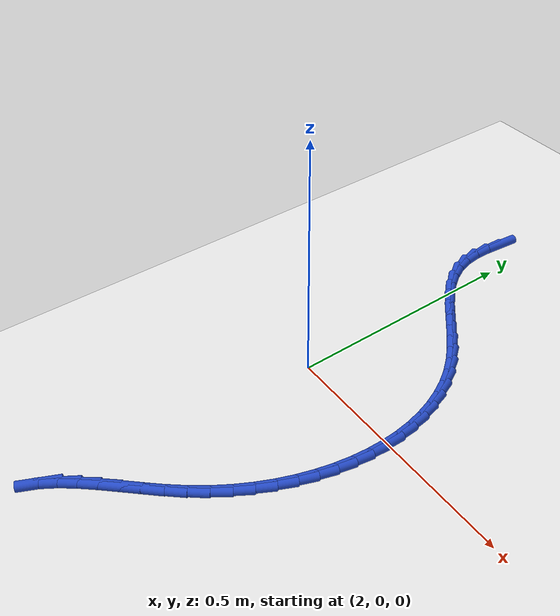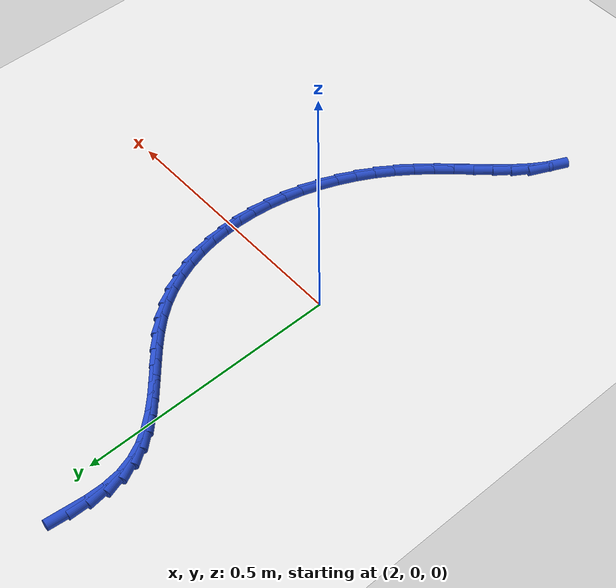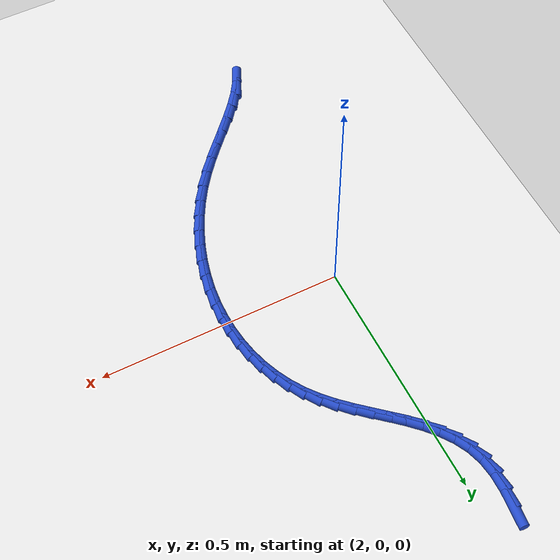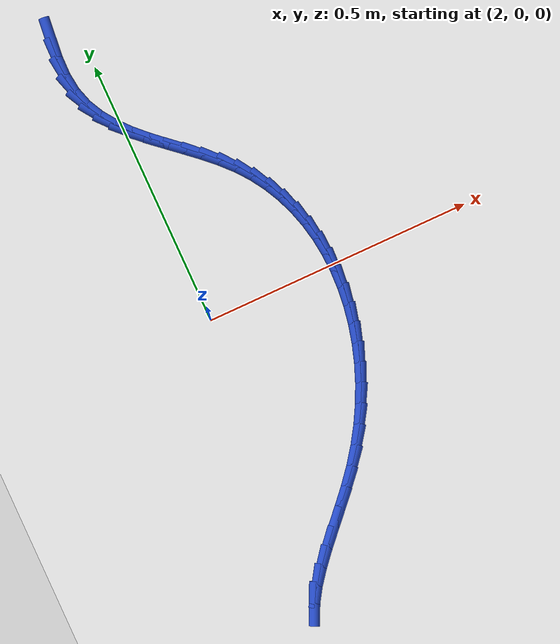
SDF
<sdf version="1.6">
 <world name="default">
  <model name="ground_plane">
   <static>1</static>
   <link name="link">
    <collision name="collision">
     <geometry><plane><normal>0 0 1</normal><size>100 100</size></plane></geometry>
     <surface><friction><ode><mu>100</mu><mu2>50</mu2></ode></friction></surface>
    </collision>
    <visual name="visual">
     <cast_shadows>0</cast_shadows>
     <geometry><plane><normal>0 0 1</normal><size>100 100</size></plane></geometry>
     <material>
      <script><uri>file://media/materials/scripts/gazebo.material</uri><name>Gazebo/WhiteGlow</name></script>
     </material>
    </visual>
   </link>
  </model>
  <model name="line">
   <link name="link_96">
    <pose>1.9489648444106158 0.5792430854870093 0.01 0 1.57 1.4663598435661342</pose>
    <collision name="collision">
     <geometry><cylinder><radius>0.01</radius><length>0.08</length></cylinder></geometry>
    </collision>
    <visual name="visual">
     <material>
      <script><name>Gazebo/Blue</name><uri>file://media/materials/scripts/gazebo.material</uri></script>
     </material>
     <geometry><cylinder><radius>0.01</radius><length>0.08</length></cylinder></geometry>
    </visual>
   </link>
   <link name="link_97">
    <pose>1.9451327325799874 0.5426833573440678 0.01 0 1.57 1.554308639845436</pose>
    <collision name="collision">
     <geometry><cylinder><radius>0.01</radius><length>0.08</length></cylinder></geometry>
    </collision>
    <visual name="visual">
     <material>
      <script><name>Gazebo/Blue</name><uri>file://media/materials/scripts/gazebo.material</uri></script>
     </material>
     <geometry><cylinder><radius>0.01</radius><length>0.08</length></cylinder></geometry>
    </visual>
   </link>
   <link name="link_98">
    <pose>1.9445539183103542 0.5075806882171493 0.01 0 1.57 -1.453545275140963</pose>
    <collision name="collision">
     <geometry><cylinder><radius>0.01</radius><length>0.08</length></cylinder></geometry>
    </collision>
    <visual name="visual">
     <material>
      <script><name>Gazebo/Blue</name><uri>file://media/materials/scripts/gazebo.material</uri></script>
     </material>
     <geometry><cylinder><radius>0.01</radius><length>0.08</length></cylinder></geometry>
    </visual>
   </link>
   <link name="link_99">
    <pose>1.9484276971078203 0.47469389990104727 0.01 0 1.57 -1.275987941624067</pose>
    <collision name="collision">
     <geometry><cylinder><radius>0.01</radius><length>0.08</length></cylinder></geometry>
    </collision>
    <visual name="visual">
     <material>
      <script><name>Gazebo/Blue</name><uri>file://media/materials/scripts/gazebo.material</uri></script>
     </material>
     <geometry><cylinder><radius>0.01</radius><length>0.08</length></cylinder></geometry>
    </visual>
   </link>
   <link name="link_100">
    <pose>1.9575790115432574 0.44455688112424907 0.01 0 1.57 -1.1047672863404894</pose>
    <collision name="collision">
     <geometry><cylinder><radius>0.01</radius><length>0.08</length></cylinder></geometry>
    </collision>
    <visual name="visual">
     <material>
      <script><name>Gazebo/Blue</name><uri>file://media/materials/scripts/gazebo.material</uri></script>
     </material>
     <geometry><cylinder><radius>0.01</radius><length>0.08</length></cylinder></geometry>
    </visual>
   </link>
   <link name="link_101">
    <pose>1.9714911873603325 0.4168973990162129 0.01 0 1.57 -0.962387377001727</pose>
    <collision name="collision">
     <geometry><cylinder><radius>0.01</radius><length>0.08</length></cylinder></geometry>
    </collision>
    <visual name="visual">
     <material>
      <script><name>Gazebo/Blue</name><uri>file://media/materials/scripts/gazebo.material</uri></script>
     </material>
     <geometry><cylinder><radius>0.01</radius><length>0.08</length></cylinder></geometry>
    </visual>
   </link>
   <link name="link_102">
    <pose>1.989347117583172 0.39126270321484263 0.01 0 1.57 -0.8536694280362815</pose>
    <collision name="collision">
     <geometry><cylinder><radius>0.01</radius><length>0.08</length></cylinder></geometry>
    </collision>
    <visual name="visual">
     <material>
      <script><name>Gazebo/Blue</name><uri>file://media/materials/scripts/gazebo.material</uri></script>
     </material>
     <geometry><cylinder><radius>0.01</radius><length>0.08</length></cylinder></geometry>
    </visual>
   </link>
   <link name="link_103">
    <pose>2.0103296952359053 0.3672000433580411 0.01 0 1.57 -0.7778555332459489</pose>
    <collision name="collision">
     <geometry><cylinder><radius>0.01</radius><length>0.08</length></cylinder></geometry>
    </collision>
    <visual name="visual">
     <material>
      <script><name>Gazebo/Blue</name><uri>file://media/materials/scripts/gazebo.material</uri></script>
     </material>
     <geometry><cylinder><radius>0.01</radius><length>0.08</length></cylinder></geometry>
    </visual>
   </link>
   <link name="link_104">
    <pose>2.033621813342656 0.34425666908371155 0.01 0 1.57 -0.7321625265159662</pose>
    <collision name="collision">
     <geometry><cylinder><radius>0.01</radius><length>0.08</length></cylinder></geometry>
    </collision>
    <visual name="visual">
     <material>
      <script><name>Gazebo/Blue</name><uri>file://media/materials/scripts/gazebo.material</uri></script>
     </material>
     <geometry><cylinder><radius>0.01</radius><length>0.08</length></cylinder></geometry>
    </visual>
   </link>
   <link name="link_105">
    <pose>2.0584063649275546 0.3219798300297569 0.01 0 1.57 -0.7140419453198644</pose>
    <collision name="collision">
     <geometry><cylinder><radius>0.01</radius><length>0.08</length></cylinder></geometry>
    </collision>
    <visual name="visual">
     <material>
      <script><name>Gazebo/Blue</name><uri>file://media/materials/scripts/gazebo.material</uri></script>
     </material>
     <geometry><cylinder><radius>0.01</radius><length>0.08</length></cylinder></geometry>
    </visual>
   </link>
   <link name="link_106">
    <pose>2.083866243014726 0.29991677583408083 0.01 0 1.57 -0.7221464372666109</pose>
    <collision name="collision">
     <geometry><cylinder><radius>0.01</radius><length>0.08</length></cylinder></geometry>
    </collision>
    <visual name="visual">
     <material>
      <script><name>Gazebo/Blue</name><uri>file://media/materials/scripts/gazebo.material</uri></script>
     </material>
     <geometry><cylinder><radius>0.01</radius><length>0.08</length></cylinder></geometry>
    </visual>
   </link>
   <link name="link_107">
    <pose>2.1091843406282984 0.2776147561345861 0.01 0 1.57 -0.7565700452572339</pose>
    <collision name="collision">
     <geometry><cylinder><radius>0.01</radius><length>0.08</length></cylinder></geometry>
    </collision>
    <visual name="visual">
     <material>
      <script><name>Gazebo/Blue</name><uri>file://media/materials/scripts/gazebo.material</uri></script>
     </material>
     <geometry><cylinder><radius>0.01</radius><length>0.08</length></cylinder></geometry>
    </visual>
   </link>
   <link name="link_108">
    <pose>2.1335435507923988 0.25462102056917557 0.01 0 1.57 -0.8186679648490488</pose>
    <collision name="collision">
     <geometry><cylinder><radius>0.01</radius><length>0.08</length></cylinder></geometry>
    </collision>
    <visual name="visual">
     <material>
      <script><name>Gazebo/Blue</name><uri>file://media/materials/scripts/gazebo.material</uri></script>
     </material>
     <geometry><cylinder><radius>0.01</radius><length>0.08</length></cylinder></geometry>
    </visual>
   </link>
   <link name="link_109">
    <pose>2.156126766531154 0.23048281877575308 0.01 0 1.57 -0.9082725085427021</pose>
    <collision name="collision">
     <geometry><cylinder><radius>0.01</radius><length>0.08</length></cylinder></geometry>
    </collision>
    <visual name="visual">
     <material>
      <script><name>Gazebo/Blue</name><uri>file://media/materials/scripts/gazebo.material</uri></script>
     </material>
     <geometry><cylinder><radius>0.01</radius><length>0.08</length></cylinder></geometry>
    </visual>
   </link>
   <link name="link_110">
    <pose>2.176172860331102 0.2047878661765708 0.01 0 1.57 -1.0067758353611629</pose>
    <collision name="collision">
     <geometry><cylinder><radius>0.01</radius><length>0.08</length></cylinder></geometry>
    </collision>
    <visual name="visual">
     <material>
      <script><name>Gazebo/Blue</name><uri>file://media/materials/scripts/gazebo.material</uri></script>
     </material>
     <geometry><cylinder><radius>0.01</radius><length>0.08</length></cylinder></geometry>
    </visual>
   </link>
   <link name="link_111">
    <pose>2.193436338588815 0.17749661365271535 0.01 0 1.57 -1.1029703841530807</pose>
    <collision name="collision">
     <geometry><cylinder><radius>0.01</radius><length>0.08</length></cylinder></geometry>
    </collision>
    <visual name="visual">
     <material>
      <script><name>Gazebo/Blue</name><uri>file://media/materials/scripts/gazebo.material</uri></script>
     </material>
     <geometry><cylinder><radius>0.01</radius><length>0.08</length></cylinder></geometry>
    </visual>
   </link>
   <link name="link_112">
    <pose>2.2079497459453092 0.14877049714579535 0.01 0 1.57 -1.1960638942148154</pose>
    <collision name="collision">
     <geometry><cylinder><radius>0.01</radius><length>0.08</length></cylinder></geometry>
    </collision>
    <visual name="visual">
     <material>
      <script><name>Gazebo/Blue</name><uri>file://media/materials/scripts/gazebo.material</uri></script>
     </material>
     <geometry><cylinder><radius>0.01</radius><length>0.08</length></cylinder></geometry>
    </visual>
   </link>
   <link name="link_113">
    <pose>2.219748326745997 0.11877290412841403 0.01 0 1.57 -1.2856248320012718</pose>
    <collision name="collision">
     <geometry><cylinder><radius>0.01</radius><length>0.08</length></cylinder></geometry>
    </collision>
    <visual name="visual">
     <material>
      <script><name>Gazebo/Blue</name><uri>file://media/materials/scripts/gazebo.material</uri></script>
     </material>
     <geometry><cylinder><radius>0.01</radius><length>0.08</length></cylinder></geometry>
    </visual>
   </link>
   <link name="link_114">
    <pose>2.2288673253362905 0.08766722207317337 0.01 0 1.57 -1.3714639455662982</pose>
    <collision name="collision">
     <geometry><cylinder><radius>0.01</radius><length>0.08</length></cylinder></geometry>
    </collision>
    <visual name="visual">
     <material>
      <script><name>Gazebo/Blue</name><uri>file://media/materials/scripts/gazebo.material</uri></script>
     </material>
     <geometry><cylinder><radius>0.01</radius><length>0.08</length></cylinder></geometry>
    </visual>
   </link>
   <link name="link_115">
    <pose>2.235341986061602 0.055616838452676724 0.01 0 1.57 -1.4535970188979737</pose>
    <collision name="collision">
     <geometry><cylinder><radius>0.01</radius><length>0.08</length></cylinder></geometry>
    </collision>
    <visual name="visual">
     <material>
      <script><name>Gazebo/Blue</name><uri>file://media/materials/scripts/gazebo.material</uri></script>
     </material>
     <geometry><cylinder><radius>0.01</radius><length>0.08</length></cylinder></geometry>
    </visual>
   </link>
   <link name="link_116">
    <pose>2.2392075532673443 0.02278514073952636 0.01 0 1.57 -1.5321986882255654</pose>
    <collision name="collision">
     <geometry><cylinder><radius>0.01</radius><length>0.08</length></cylinder></geometry>
    </collision>
    <visual name="visual">
     <material>
      <script><name>Gazebo/Blue</name><uri>file://media/materials/scripts/gazebo.material</uri></script>
     </material>
     <geometry><cylinder><radius>0.01</radius><length>0.08</length></cylinder></geometry>
    </visual>
   </link>
   <link name="link_117">
    <pose>2.240499271298929 -0.010664483593675965 0.01 0 1.57 1.5340360893204543</pose>
    <collision name="collision">
     <geometry><cylinder><radius>0.01</radius><length>0.08</length></cylinder></geometry>
    </collision>
    <visual name="visual">
     <material>
      <script><name>Gazebo/Blue</name><uri>file://media/materials/scripts/gazebo.material</uri></script>
     </material>
     <geometry><cylinder><radius>0.01</radius><length>0.08</length></cylinder></geometry>
    </visual>
   </link>
   <link name="link_118">
    <pose>2.2392523845017687 -0.044568647074325965 0.01 0 1.57 1.4615615063721858</pose>
    <collision name="collision">
     <geometry><cylinder><radius>0.01</radius><length>0.08</length></cylinder></geometry>
    </collision>
    <visual name="visual">
     <material>
      <script><name>Gazebo/Blue</name><uri>file://media/materials/scripts/gazebo.material</uri></script>
     </material>
     <geometry><cylinder><radius>0.01</radius><length>0.08</length></cylinder></geometry>
    </visual>
   </link>
   <link name="link_119">
    <pose>2.2355021372212747 -0.07876396222982171 0.01 0 1.57 1.39156889614656</pose>
    <collision name="collision">
     <geometry><cylinder><radius>0.01</radius><length>0.08</length></cylinder></geometry>
    </collision>
    <visual name="visual">
     <material>
      <script><name>Gazebo/Blue</name><uri>file://media/materials/scripts/gazebo.material</uri></script>
     </material>
     <geometry><cylinder><radius>0.01</radius><length>0.08</length></cylinder></geometry>
    </visual>
   </link>
   <link name="link_120">
    <pose>2.2292837738028606 -0.11308704158756078 0.01 0 1.57 1.3236401468826473</pose>
    <collision name="collision">
     <geometry><cylinder><radius>0.01</radius><length>0.08</length></cylinder></geometry>
    </collision>
    <visual name="visual">
     <material>
      <script><name>Gazebo/Blue</name><uri>file://media/materials/scripts/gazebo.material</uri></script>
     </material>
     <geometry><cylinder><radius>0.01</radius><length>0.08</length></cylinder></geometry>
    </visual>
   </link>
   <link name="link_121">
    <pose>2.2206325385919374 -0.14737449767494035 0.01 0 1.57 1.2573574905398686</pose>
    <collision name="collision">
     <geometry><cylinder><radius>0.01</radius><length>0.08</length></cylinder></geometry>
    </collision>
    <visual name="visual">
     <material>
      <script><name>Gazebo/Blue</name><uri>file://media/materials/scripts/gazebo.material</uri></script>
     </material>
     <geometry><cylinder><radius>0.01</radius><length>0.08</length></cylinder></geometry>
    </visual>
   </link>
   <link name="link_122">
    <pose>2.209583675933919 -0.18146294301935878 0.01 0 1.57 1.1923153239182334</pose>
    <collision name="collision">
     <geometry><cylinder><radius>0.01</radius><length>0.08</length></cylinder></geometry>
    </collision>
    <visual name="visual">
     <material>
      <script><name>Gazebo/Blue</name><uri>file://media/materials/scripts/gazebo.material</uri></script>
     </material>
     <geometry><cylinder><radius>0.01</radius><length>0.08</length></cylinder></geometry>
    </visual>
   </link>
   <link name="link_123">
    <pose>2.1961724301742165 -0.2151889901482117 0.01 0 1.57 1.1281282948919327</pose>
    <collision name="collision">
     <geometry><cylinder><radius>0.01</radius><length>0.08</length></cylinder></geometry>
    </collision>
    <visual name="visual">
     <material>
      <script><name>Gazebo/Blue</name><uri>file://media/materials/scripts/gazebo.material</uri></script>
     </material>
     <geometry><cylinder><radius>0.01</radius><length>0.08</length></cylinder></geometry>
    </visual>
   </link>
   <link name="link_124">
    <pose>2.180434045658242 -0.2483892515888973 0.01 0 1.57 1.0644370258709241</pose>
    <collision name="collision">
     <geometry><cylinder><radius>0.01</radius><length>0.08</length></cylinder></geometry>
    </collision>
    <visual name="visual">
     <material>
      <script><name>Gazebo/Blue</name><uri>file://media/materials/scripts/gazebo.material</uri></script>
     </material>
     <geometry><cylinder><radius>0.01</radius><length>0.08</length></cylinder></geometry>
    </visual>
   </link>
   <link name="link_125">
    <pose>2.1624037667314084 -0.280900339868813 0.01 0 1.57 1.000912569788081</pose>
    <collision name="collision">
     <geometry><cylinder><radius>0.01</radius><length>0.08</length></cylinder></geometry>
    </collision>
    <visual name="visual">
     <material>
      <script><name>Gazebo/Blue</name><uri>file://media/materials/scripts/gazebo.material</uri></script>
     </material>
     <geometry><cylinder><radius>0.01</radius><length>0.08</length></cylinder></geometry>
    </visual>
   </link>
   <link name="link_126">
    <pose>2.142116837739127 -0.31255886751535694 0.01 0 1.57 0.9372635397766367</pose>
    <collision name="collision">
     <geometry><cylinder><radius>0.01</radius><length>0.08</length></cylinder></geometry>
    </collision>
    <visual name="visual">
     <material>
      <script><name>Gazebo/Blue</name><uri>file://media/materials/scripts/gazebo.material</uri></script>
     </material>
     <geometry><cylinder><radius>0.01</radius><length>0.08</length></cylinder></geometry>
    </visual>
   </link>
   <link name="link_127">
    <pose>2.119608616142126 -0.3432014938415793 0.01 0 1.57 0.8784865651601375</pose>
    <collision name="collision">
     <geometry><cylinder><radius>0.01</radius><length>0.08</length></cylinder></geometry>
    </collision>
    <visual name="visual">
     <material>
      <script><name>Gazebo/Blue</name><uri>file://media/materials/scripts/gazebo.material</uri></script>
     </material>
     <geometry><cylinder><radius>0.01</radius><length>0.08</length></cylinder></geometry>
    </visual>
   </link>
   <link name="link_128">
    <pose>2.095109796506023 -0.3727456715904234 0.01 0 1.57 0.8396495879011392</pose>
    <collision name="collision">
     <geometry><cylinder><radius>0.01</radius><length>0.08</length></cylinder></geometry>
    </collision>
    <visual name="visual">
     <material>
      <script><name>Gazebo/Blue</name><uri>file://media/materials/scripts/gazebo.material</uri></script>
     </material>
     <geometry><cylinder><radius>0.01</radius><length>0.08</length></cylinder></geometry>
    </visual>
   </link>
   <link name="link_129">
    <pose>2.0694472653312954 -0.4013554446034243 0.01 0 1.57 0.8225800422390181</pose>
    <collision name="collision">
     <geometry><cylinder><radius>0.01</radius><length>0.08</length></cylinder></geometry>
    </collision>
    <visual name="visual">
     <material>
      <script><name>Gazebo/Blue</name><uri>file://media/materials/scripts/gazebo.material</uri></script>
     </material>
     <geometry><cylinder><radius>0.01</radius><length>0.08</length></cylinder></geometry>
    </visual>
   </link>
   <link name="link_130">
    <pose>2.043561251057094 -0.4292417361103469 0.01 0 1.57 0.8273290027910899</pose>
    <collision name="collision">
     <geometry><cylinder><radius>0.01</radius><length>0.08</length></cylinder></geometry>
    </collision>
    <visual name="visual">
     <material>
      <script><name>Gazebo/Blue</name><uri>file://media/materials/scripts/gazebo.material</uri></script>
     </material>
     <geometry><cylinder><radius>0.01</radius><length>0.08</length></cylinder></geometry>
    </visual>
   </link>
   <link name="link_131">
    <pose>2.018391982122572 -0.4566154693409573 0.01 0 1.57 0.8556558778621458</pose>
    <collision name="collision">
     <geometry><cylinder><radius>0.01</radius><length>0.08</length></cylinder></geometry>
    </collision>
    <visual name="visual">
     <material>
      <script><name>Gazebo/Blue</name><uri>file://media/materials/scripts/gazebo.material</uri></script>
     </material>
     <geometry><cylinder><radius>0.01</radius><length>0.08</length></cylinder></geometry>
    </visual>
   </link>
   <link name="link_132">
    <pose>1.9948796869668803 -0.48368756752501896 0.01 0 1.57 0.9113816406797018</pose>
    <collision name="collision">
     <geometry><cylinder><radius>0.01</radius><length>0.08</length></cylinder></geometry>
    </collision>
    <visual name="visual">
     <material>
      <script><name>Gazebo/Blue</name><uri>file://media/materials/scripts/gazebo.material</uri></script>
     </material>
     <geometry><cylinder><radius>0.01</radius><length>0.08</length></cylinder></geometry>
    </visual>
   </link>
   <link name="link_133">
    <pose>1.9739645940291701 -0.5106689538922979 0.01 0 1.57 1.0006292143458526</pose>
    <collision name="collision">
     <geometry><cylinder><radius>0.01</radius><length>0.08</length></cylinder></geometry>
    </collision>
    <visual name="visual">
     <material>
      <script><name>Gazebo/Blue</name><uri>file://media/materials/scripts/gazebo.material</uri></script>
     </material>
     <geometry><cylinder><radius>0.01</radius><length>0.08</length></cylinder></geometry>
    </visual>
   </link>
   <link name="link_134">
    <pose>1.9565869317485935 -0.5377705516725593 0.01 0 1.57 1.1312378338866547</pose>
    <collision name="collision">
     <geometry><cylinder><radius>0.01</radius><length>0.08</length></cylinder></geometry>
    </collision>
    <visual name="visual">
     <material>
      <script><name>Gazebo/Blue</name><uri>file://media/materials/scripts/gazebo.material</uri></script>
     </material>
     <geometry><cylinder><radius>0.01</radius><length>0.08</length></cylinder></geometry>
    </visual>
   </link>
  </model>
 </world>
</sdf>
